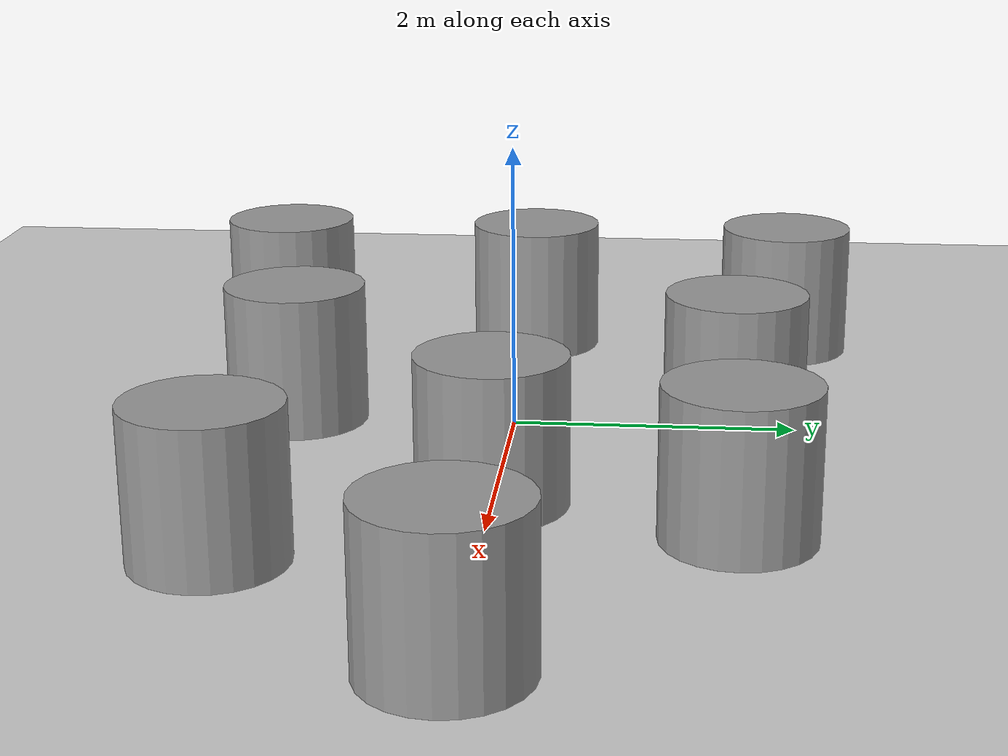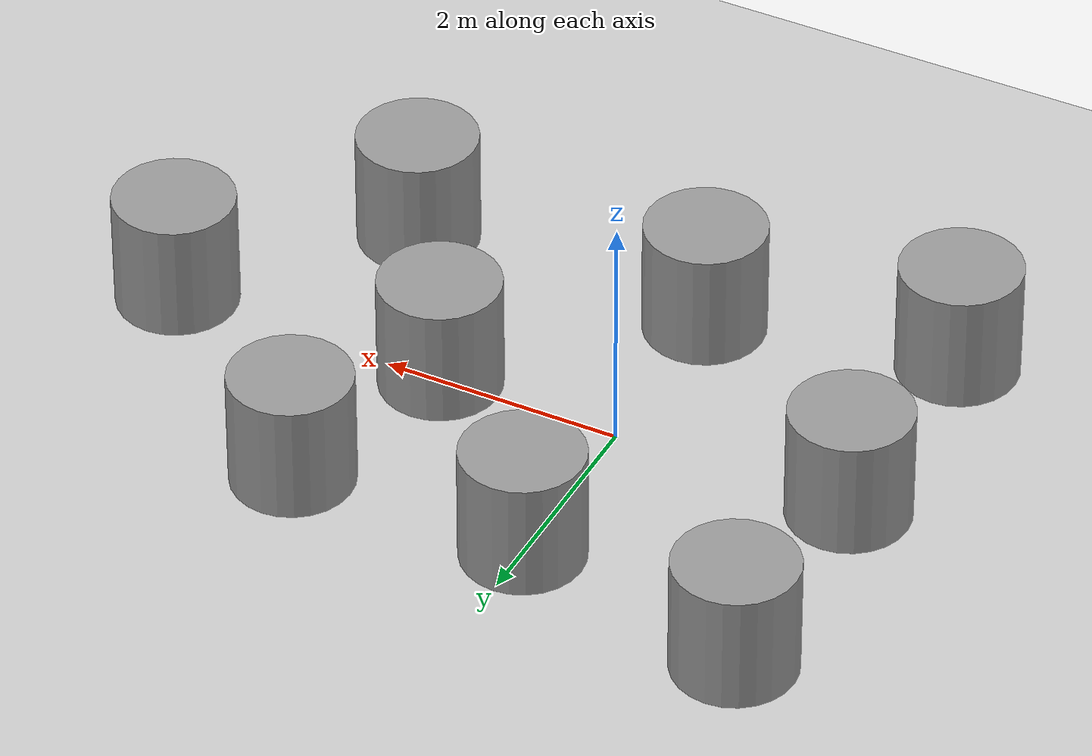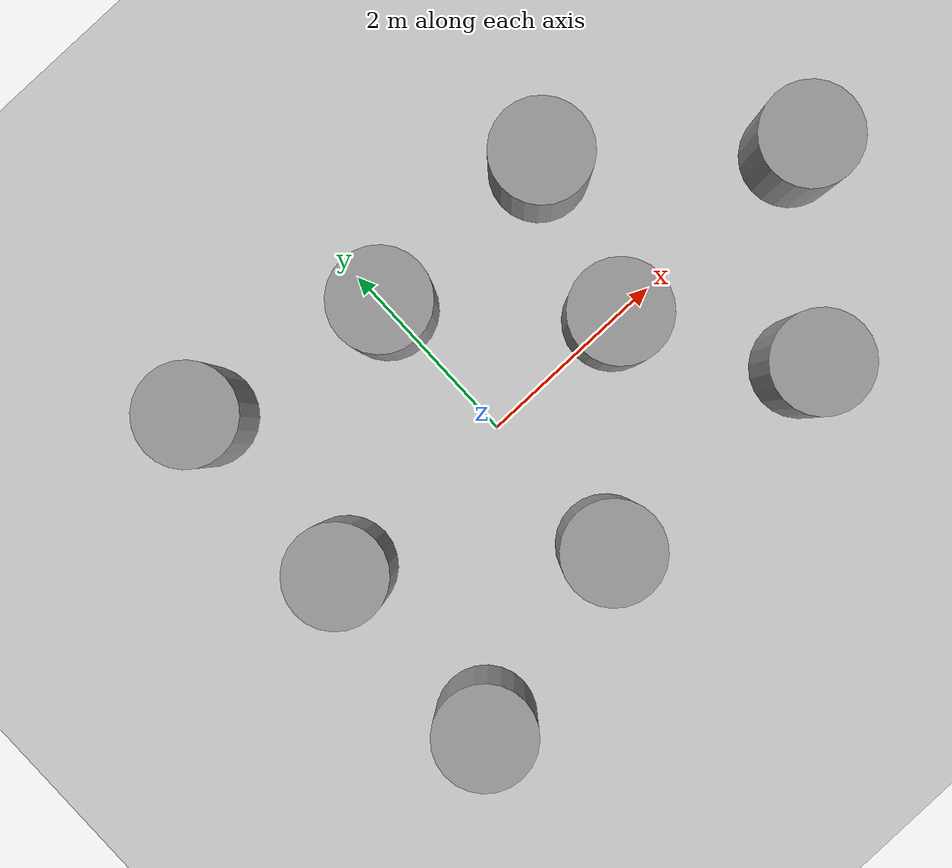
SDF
<sdf version='1.4'>
  <world name='default'>
    <light name='sun' type='directional'>
      <cast_shadows>1</cast_shadows>
      <pose>0 0 10 0 -0 0</pose>
      <diffuse>0.8 0.8 0.8 1</diffuse>
      <specular>0.2 0.2 0.2 1</specular>
      <attenuation>
        <range>1000</range>
        <constant>0.9</constant>
        <linear>0.01</linear>
        <quadratic>0.001</quadratic>
      </attenuation>
      <direction>-0.5 0.1 -0.9</direction>
    </light>
    <model name='ground_plane'>
      <static>1</static>
      <link name='link'>
        <collision name='collision'>
          <geometry>
            <plane>
              <normal>0 0 1</normal>
              <size>100 100</size>
            </plane>
          </geometry>
          <surface>
            <friction>
              <ode>
                <mu>100</mu>
                <mu2>50</mu2>
              </ode>
            </friction>
            <bounce/>
            <contact>
              <ode/>
            </contact>
          </surface>
          <max_contacts>10</max_contacts>
        </collision>
        <visual name='visual'>
          <cast_shadows>0</cast_shadows>
          <geometry>
            <plane>
              <normal>0 0 1</normal>
              <size>100 100</size>
            </plane>
          </geometry>
          <material>
            <script>
              <uri>file://media/materials/scripts/gazebo.material</uri>
              <name>Gazebo/Grey</name>
            </script>
          </material>
        </visual>
        <velocity_decay>
          <linear>0</linear>
          <angular>0</angular>
        </velocity_decay>
        <self_collide>0</self_collide>
        <kinematic>0</kinematic>
        <gravity>1</gravity>
      </link>
    </model>
    <physics type='ode'>
      <max_step_size>0.001</max_step_size>
      <real_time_factor>1</real_time_factor>
      <real_time_update_rate>1000</real_time_update_rate>
      <gravity>0 0 -9.8</gravity>
    </physics>
    <scene>
      <ambient>0.4 0.4 0.4 1</ambient>
      <background>0.7 0.7 0.7 1</background>
      <shadows>1</shadows>
    </scene>
    <spherical_coordinates>
      <surface_model>EARTH_WGS84</surface_model>
      <latitude_deg>0</latitude_deg>
      <longitude_deg>0</longitude_deg>
      <elevation>0</elevation>
      <heading_deg>0</heading_deg>
    </spherical_coordinates>

    <model name='unit_cylinder_1'>
      <static>1</static>
      <pose>0 1.56701 0.5 0 -0 0</pose>
      <link name='link'>
        <inertial>
          <mass>1</mass>
          <inertia>
            <ixx>1</ixx>
            <ixy>0</ixy>
            <ixz>0</ixz>
            <iyy>1</iyy>
            <iyz>0</iyz>
            <izz>1</izz>
          </inertia>
        </inertial>
        <collision name='collision'>
          <geometry>
            <cylinder>
              <radius>0.5</radius>
              <length>1</length>
            </cylinder>
          </geometry>
          <max_contacts>10</max_contacts>
          <surface>
            <bounce/>
            <friction>
              <ode/>
            </friction>
            <contact>
              <ode/>
            </contact>
          </surface>
        </collision>
        <visual name='visual'>
          <geometry>
            <cylinder>
              <radius>0.5</radius>
              <length>1</length>
            </cylinder>
          </geometry>
          <material>
            <script>
              <uri>file://media/materials/scripts/gazebo.material</uri>
              <name>Gazebo/Grey</name>
            </script>
          </material>
        </visual>
        <velocity_decay>
          <linear>0</linear>
          <angular>0</angular>
        </velocity_decay>
        <self_collide>0</self_collide>
        <kinematic>0</kinematic>
        <gravity>1</gravity>
      </link>
      <static>0</static>
    </model>
    <model name='unit_cylinder_2'>
      <static>1</static>
      <pose>2 1.55881 0.5 0 -0 0</pose>
      <link name='link'>
        <inertial>
          <mass>1</mass>
          <inertia>
            <ixx>1</ixx>
            <ixy>0</ixy>
            <ixz>0</ixz>
            <iyy>1</iyy>
            <iyz>0</iyz>
            <izz>1</izz>
          </inertia>
        </inertial>
        <collision name='collision'>
          <geometry>
            <cylinder>
              <radius>0.5</radius>
              <length>1</length>
            </cylinder>
          </geometry>
          <max_contacts>10</max_contacts>
          <surface>
            <bounce/>
            <friction>
              <ode/>
            </friction>
            <contact>
              <ode/>
            </contact>
          </surface>
        </collision>
        <visual name='visual'>
          <geometry>
            <cylinder>
              <radius>0.5</radius>
              <length>1</length>
            </cylinder>
          </geometry>
          <material>
            <script>
              <uri>file://media/materials/scripts/gazebo.material</uri>
              <name>Gazebo/Grey</name>
            </script>
          </material>
        </visual>
        <velocity_decay>
          <linear>0</linear>
          <angular>0</angular>
        </velocity_decay>
        <self_collide>0</self_collide>
        <kinematic>0</kinematic>
        <gravity>1</gravity>
      </link>
      <static>0</static>
    </model>
    <model name='unit_cylinder_3'>
      <static>1</static>
      <pose>0 -1.56452 0.5 0 -0 0</pose>
      <link name='link'>
        <inertial>
          <mass>1</mass>
          <inertia>
            <ixx>1</ixx>
            <ixy>0</ixy>
            <ixz>0</ixz>
            <iyy>1</iyy>
            <iyz>0</iyz>
            <izz>1</izz>
          </inertia>
        </inertial>
        <collision name='collision'>
          <geometry>
            <cylinder>
              <radius>0.5</radius>
              <length>1</length>
            </cylinder>
          </geometry>
          <max_contacts>10</max_contacts>
          <surface>
            <bounce/>
            <friction>
              <ode/>
            </friction>
            <contact>
              <ode/>
            </contact>
          </surface>
        </collision>
        <visual name='visual'>
          <geometry>
            <cylinder>
              <radius>0.5</radius>
              <length>1</length>
            </cylinder>
          </geometry>
          <material>
            <script>
              <uri>file://media/materials/scripts/gazebo.material</uri>
              <name>Gazebo/Grey</name>
            </script>
          </material>
        </visual>
        <velocity_decay>
          <linear>0</linear>
          <angular>0</angular>
        </velocity_decay>
        <self_collide>0</self_collide>
        <kinematic>0</kinematic>
        <gravity>1</gravity>
      </link>
      <static>0</static>
    </model>
    <model name='unit_cylinder_4'>
      <static>1</static>
      <pose>2.56824 -1.58381 0.5 0 -0 0</pose>
      <link name='link'>
        <inertial>
          <mass>1</mass>
          <inertia>
            <ixx>1</ixx>
            <ixy>0</ixy>
            <ixz>0</ixz>
            <iyy>1</iyy>
            <iyz>0</iyz>
            <izz>1</izz>
          </inertia>
        </inertial>
        <collision name='collision'>
          <geometry>
            <cylinder>
              <radius>0.5</radius>
              <length>1</length>
            </cylinder>
          </geometry>
          <max_contacts>10</max_contacts>
          <surface>
            <bounce/>
            <friction>
              <ode/>
            </friction>
            <contact>
              <ode/>
            </contact>
          </surface>
        </collision>
        <visual name='visual'>
          <geometry>
            <cylinder>
              <radius>0.5</radius>
              <length>1</length>
            </cylinder>
          </geometry>
          <material>
            <script>
              <uri>file://media/materials/scripts/gazebo.material</uri>
              <name>Gazebo/Grey</name>
            </script>
          </material>
        </visual>
        <velocity_decay>
          <linear>0</linear>
          <angular>0</angular>
        </velocity_decay>
        <self_collide>0</self_collide>
        <kinematic>0</kinematic>
        <gravity>1</gravity>
      </link>
      <static>0</static>
    </model>
    <model name='unit_cylinder_5'>
      <static>1</static>
      <pose>-2 0 0.5 0 -0 0</pose>
      <link name='link'>
        <inertial>
          <mass>1</mass>
          <inertia>
            <ixx>1</ixx>
            <ixy>0</ixy>
            <ixz>0</ixz>
            <iyy>1</iyy>
            <iyz>0</iyz>
            <izz>1</izz>
          </inertia>
        </inertial>
        <collision name='collision'>
          <geometry>
            <cylinder>
              <radius>0.5</radius>
              <length>1</length>
            </cylinder>
          </geometry>
          <max_contacts>10</max_contacts>
          <surface>
            <bounce/>
            <friction>
              <ode/>
            </friction>
            <contact>
              <ode/>
            </contact>
          </surface>
        </collision>
        <visual name='visual'>
          <geometry>
            <cylinder>
              <radius>0.5</radius>
              <length>1</length>
            </cylinder>
          </geometry>
          <material>
            <script>
              <uri>file://media/materials/scripts/gazebo.material</uri>
              <name>Gazebo/Grey</name>
            </script>
          </material>
        </visual>
        <velocity_decay>
          <linear>0</linear>
          <angular>0</angular>
        </velocity_decay>
        <self_collide>0</self_collide>
        <kinematic>0</kinematic>
        <gravity>1</gravity>
      </link>
      <static>0</static>
    </model>
    <model name='unit_cylinder_6'>
      <static>1</static>
      <pose>1.5341 0 0.5 0 -0 0</pose>
      <link name='link'>
        <inertial>
          <mass>1</mass>
          <inertia>
            <ixx>1</ixx>
            <ixy>0</ixy>
            <ixz>0</ixz>
            <iyy>1</iyy>
            <iyz>0</iyz>
            <izz>1</izz>
          </inertia>
        </inertial>
        <collision name='collision'>
          <geometry>
            <cylinder>
              <radius>0.5</radius>
              <length>1</length>
            </cylinder>
          </geometry>
          <max_contacts>10</max_contacts>
          <surface>
            <bounce/>
            <friction>
              <ode/>
            </friction>
            <contact>
              <ode/>
            </contact>
          </surface>
        </collision>
        <visual name='visual'>
          <geometry>
            <cylinder>
              <radius>0.5</radius>
              <length>1</length>
            </cylinder>
          </geometry>
          <material>
            <script>
              <uri>file://media/materials/scripts/gazebo.material</uri>
              <name>Gazebo/Grey</name>
            </script>
          </material>
        </visual>
        <velocity_decay>
          <linear>0</linear>
          <angular>0</angular>
        </velocity_decay>
        <self_collide>0</self_collide>
        <kinematic>0</kinematic>
        <gravity>1</gravity>
      </link>
      <static>0</static>
    </model>
    <model name='unit_cylinder_7'>
      <static>1</static>
      <pose>3.89904 -0 0.499998 0 -0 0</pose>
      <link name='link'>
        <inertial>
          <mass>1</mass>
          <inertia>
            <ixx>1</ixx>
            <ixy>0</ixy>
            <ixz>0</ixz>
            <iyy>1</iyy>
            <iyz>0</iyz>
            <izz>1</izz>
          </inertia>
        </inertial>
        <collision name='collision'>
          <geometry>
            <cylinder>
              <radius>0.5</radius>
              <length>1</length>
            </cylinder>
          </geometry>
          <max_contacts>10</max_contacts>
          <surface>
            <bounce/>
            <friction>
              <ode/>
            </friction>
            <contact>
              <ode/>
            </contact>
          </surface>
        </collision>
        <visual name='visual'>
          <geometry>
            <cylinder>
              <radius>0.5</radius>
              <length>1</length>
            </cylinder>
          </geometry>
          <material>
            <script>
              <uri>file://media/materials/scripts/gazebo.material</uri>
              <name>Gazebo/Grey</name>
            </script>
          </material>
        </visual>
        <velocity_decay>
          <linear>0</linear>
          <angular>0</angular>
        </velocity_decay>
        <self_collide>0</self_collide>
        <kinematic>0</kinematic>
        <gravity>1</gravity>
      </link>
      <static>0</static>
    </model>
    <model name='unit_cylinder_8'>
      <static>1</static>
      <pose>-2 2 0.5 0 -0 0</pose>
      <link name='link'>
        <inertial>
          <mass>1</mass>
          <inertia>
            <ixx>1</ixx>
            <ixy>0</ixy>
            <ixz>0</ixz>
            <iyy>1</iyy>
            <iyz>0</iyz>
            <izz>1</izz>
          </inertia>
        </inertial>
        <collision name='collision'>
          <geometry>
            <cylinder>
              <radius>0.5</radius>
              <length>1</length>
            </cylinder>
          </geometry>
          <max_contacts>10</max_contacts>
          <surface>
            <bounce/>
            <friction>
              <ode/>
            </friction>
            <contact>
              <ode/>
            </contact>
          </surface>
        </collision>
        <visual name='visual'>
          <geometry>
            <cylinder>
              <radius>0.5</radius>
              <length>1</length>
            </cylinder>
          </geometry>
          <material>
            <script>
              <uri>file://media/materials/scripts/gazebo.material</uri>
              <name>Gazebo/Grey</name>
            </script>
          </material>
        </visual>
        <velocity_decay>
          <linear>0</linear>
          <angular>0</angular>
        </velocity_decay>
        <self_collide>0</self_collide>
        <kinematic>0</kinematic>
        <gravity>1</gravity>
      </link>
      <static>0</static>
    </model>
    <model name='unit_cylinder_9'>
      <static>1</static>
      <pose>-2 -2 0.5 0 -0 0</pose>
      <link name='link'>
        <inertial>
          <mass>1</mass>
          <inertia>
            <ixx>1</ixx>
            <ixy>0</ixy>
            <ixz>0</ixz>
            <iyy>1</iyy>
            <iyz>0</iyz>
            <izz>1</izz>
          </inertia>
        </inertial>
        <collision name='collision'>
          <geometry>
            <cylinder>
              <radius>0.5</radius>
              <length>1</length>
            </cylinder>
          </geometry>
          <max_contacts>10</max_contacts>
          <surface>
            <bounce/>
            <friction>
              <ode/>
            </friction>
            <contact>
              <ode/>
            </contact>
          </surface>
        </collision>
        <visual name='visual'>
          <geometry>
            <cylinder>
              <radius>0.5</radius>
              <length>1</length>
            </cylinder>
          </geometry>
          <material>
            <script>
              <uri>file://media/materials/scripts/gazebo.material</uri>
              <name>Gazebo/Grey</name>
            </script>
          </material>
        </visual>
        <velocity_decay>
          <linear>0</linear>
          <angular>0</angular>
        </velocity_decay>
        <self_collide>0</self_collide>
        <kinematic>0</kinematic>
        <gravity>1</gravity>
      </link>
      <static>0</static>
    </model>

    <gui fullscreen='0'>
      <camera name='user_camera'>
        <pose>0.261395 -10.5509 17.1626 1.09996e-16 1.0418 1.42419</pose>
        <view_controller>orbit</view_controller>
      </camera>
    </gui>
  </world>
</sdf>
